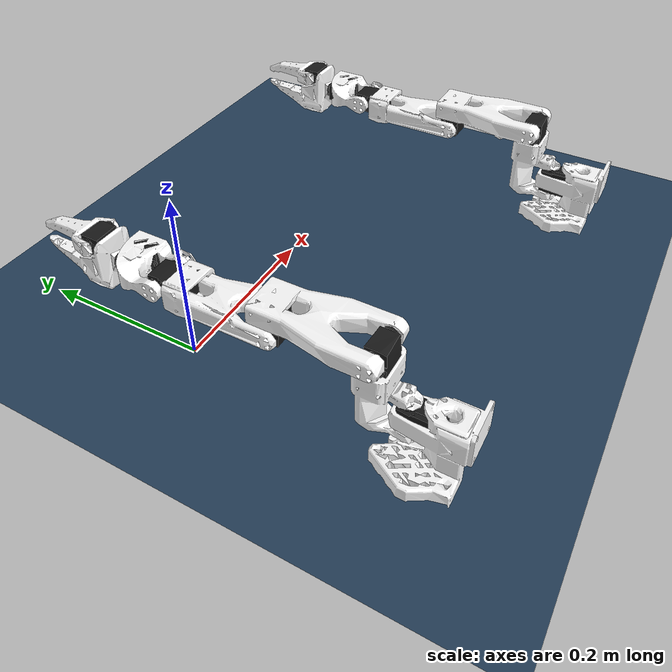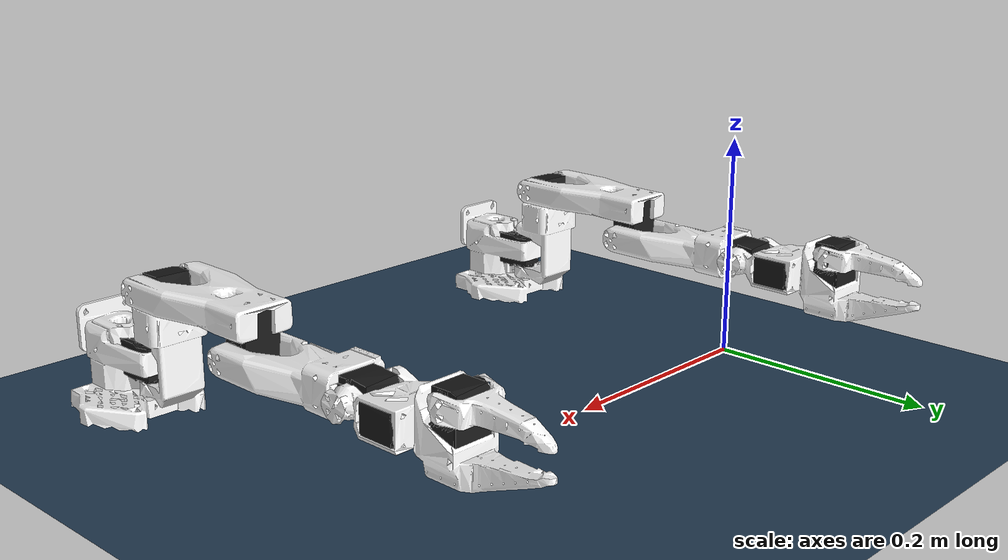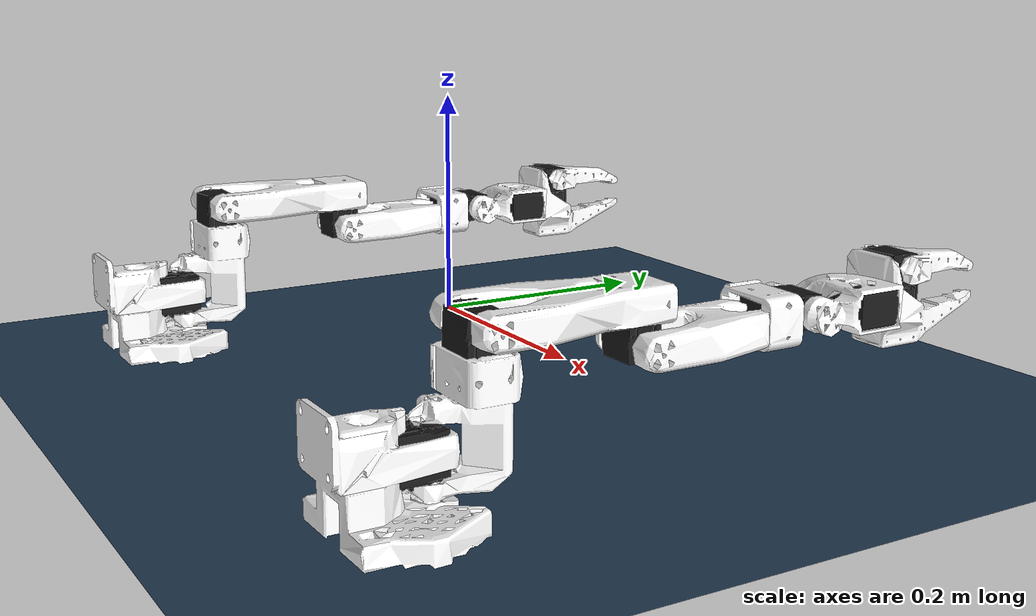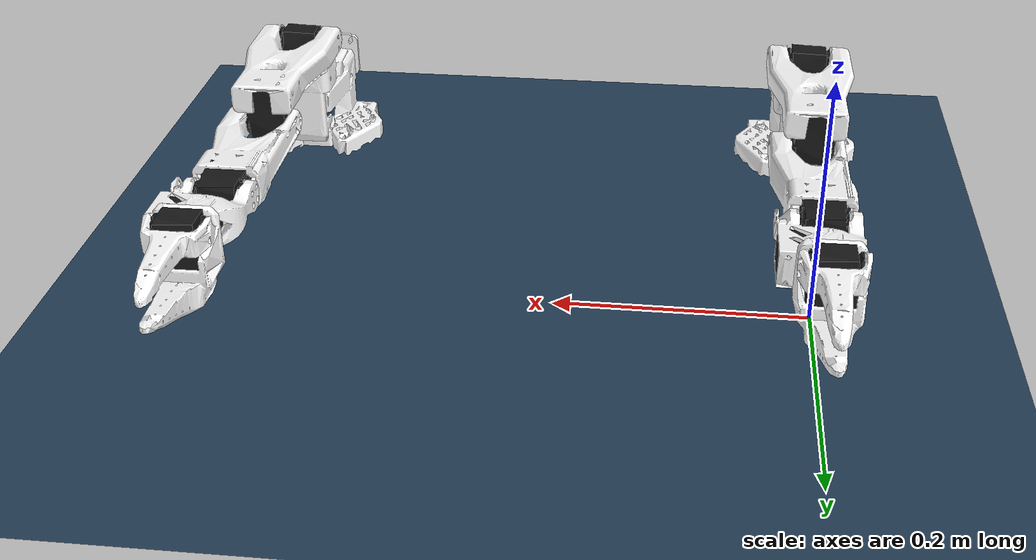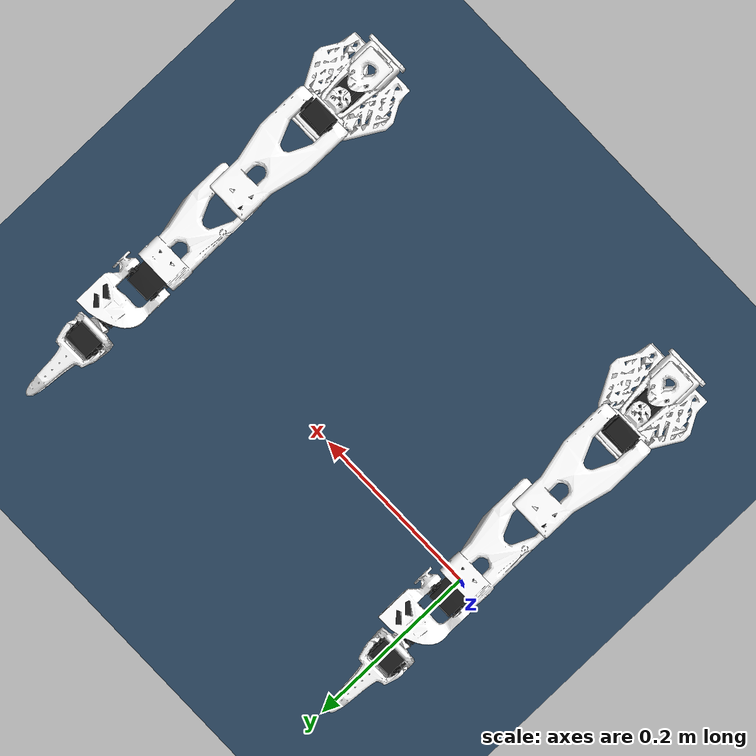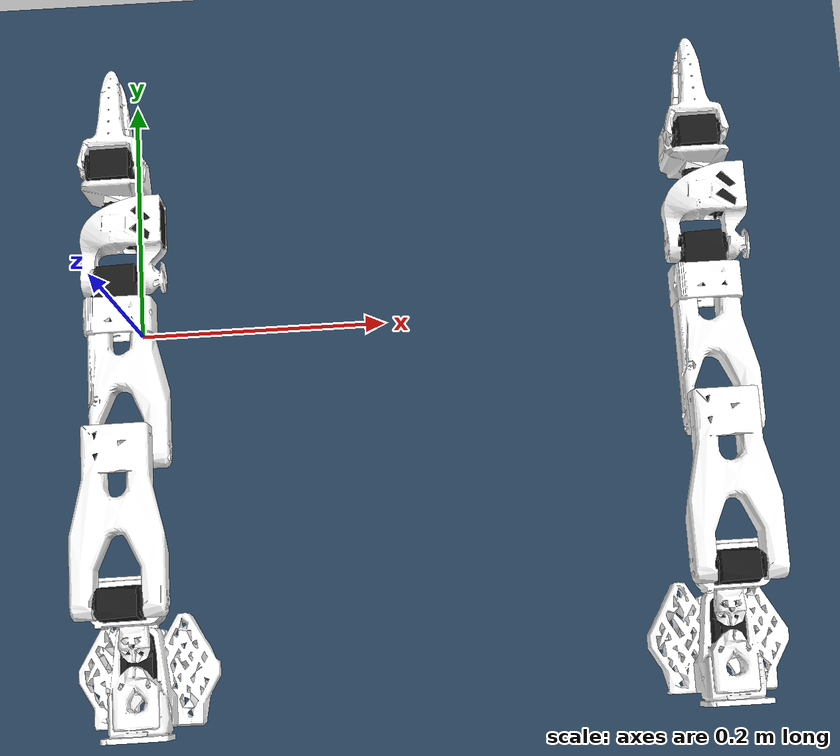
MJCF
<mujoco model="so_arm100 scene">
  <include file="so_arm100.xml"/>

  <statistic center="0.225 0.0 0.08" extent="0.65"/>

  <visual>
    <headlight diffuse="0.6 0.6 0.6" ambient="0.3 0.3 0.3" specular="0 0 0"/>
    <rgba haze="0.15 0.25 0.35 1"/>
    <global azimuth="45" elevation="-20"/>
  </visual>

  <asset>
    <texture type="skybox" builtin="gradient" rgb1="0.3 0.5 0.7" rgb2="0 0 0" width="512" height="3072"/>
    <texture type="2d" name="groundplane" builtin="checker" mark="edge" rgb1="0.2 0.3 0.4" rgb2="0.1 0.2 0.3"
      markrgb="0.8 0.8 0.8" width="300" height="300"/>
    <material name="groundplane" texture="groundplane" texuniform="true" texrepeat="5 5" reflectance="0.2"/>
  </asset>

  <worldbody>
    <light pos="0 0 1.5" dir="0 0 -1" directional="true"/>
    <geom name="floor" size="0 0 0.05" type="plane" material="groundplane"/>
    <!-- Overhead camera centered between arms. -->
    <camera name="overhead_cam" pos="0.225 0.0 1.0" quat="1 0 0 0" fovy="45" />
    <!-- D435i RGB-like FoV: vertical ~42 deg (MuJoCo fovy is vertical FoV). -->
    <camera name="front_cam" pos="0.225 0.75 0.45" xyaxes="-1 0 0 0 -0.5 0.866" fovy="42" />
  </worldbody>
</mujoco>

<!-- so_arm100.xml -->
<mujoco model="so_arm100_bimanual">
  <!--
    Original from: MuJoCo Menagerie (https://github.com/deepmind/mujoco_menagerie)
    Licensed under Apache License 2.0
    Modifications: Bimanual layout with left/right SO ARM100 robots.
  -->
  <compiler angle="radian" meshdir="assets/"/>

  <option cone="elliptic" impratio="10"/>

  <asset>
    <material name="white" rgba="1 1 1 1"/>
    <material name="black" rgba="0.1 0.1 0.1 1"/>

    <mesh name="Base" file="Base.stl"/>
    <mesh name="Base_Motor" file="Base_Motor.stl"/>
    <mesh name="Rotation_Pitch" file="Rotation_Pitch.stl"/>
    <mesh name="Rotation_Pitch_Motor" file="Rotation_Pitch_Motor.stl"/>
    <mesh name="Upper_Arm" file="Upper_Arm.stl"/>
    <mesh name="Upper_Arm_Motor" file="Upper_Arm_Motor.stl"/>
    <mesh name="Lower_Arm" file="Lower_Arm.stl"/>
    <mesh name="Lower_Arm_Motor" file="Lower_Arm_Motor.stl"/>
    <mesh name="Wrist_Pitch_Roll" file="Wrist_Pitch_Roll.stl"/>
    <mesh name="Wrist_Pitch_Roll_Motor" file="Wrist_Pitch_Roll_Motor.stl"/>
    <mesh name="Fixed_Jaw" file="Fixed_Jaw.stl"/>
    <mesh name="Fixed_Jaw_Motor" file="Fixed_Jaw_Motor.stl"/>
    <mesh name="Fixed_Jaw_Collision_1" file="Fixed_Jaw_Collision_1.stl"/>
    <mesh name="Fixed_Jaw_Collision_2" file="Fixed_Jaw_Collision_2.stl"/>
    <mesh name="Moving_Jaw" file="Moving_Jaw.stl"/>
    <mesh name="Moving_Jaw_Collision_1" file="Moving_Jaw_Collision_1.stl"/>
    <mesh name="Moving_Jaw_Collision_2" file="Moving_Jaw_Collision_2.stl"/>
    <mesh name="Moving_Jaw_Collision_3" file="Moving_Jaw_Collision_3.stl"/>
  </asset>

  <default>
    <default class="so_arm100">
      <joint frictionloss="0.1" armature="0.1"/>
      <position kp="50" dampratio="1" forcerange="-3.5 3.5"/>
      <default class="Rotation">
        <joint axis="0 1 0" range="-1.92 1.92"/>
      </default>
      <default class="Pitch">
        <joint axis="1 0 0" range="-3.32 0.174"/>
      </default>
      <default class="Elbow">
        <joint axis="1 0 0" range="-0.174 3.14"/>
      </default>
      <default class="Wrist_Pitch">
        <joint axis="1 0 0" range="-1.66 1.66"/>
      </default>
      <default class="Wrist_Roll">
        <joint axis="0 1 0" range="-2.79 2.79"/>
      </default>
      <default class="Jaw">
        <joint axis="0 0 1" range="-0.174 1.75"/>
      </default>
      <default class="visual">
        <geom type="mesh" contype="0" conaffinity="0" density="0" group="2" material="white"/>
        <default class="motor_visual">
          <geom material="black"/>
        </default>
      </default>
      <default class="collision">
        <geom group="3" type="mesh" material="white"/>
        <default class="finger_collision">
          <geom type="box" solimp="2 1 0.01" solref="0.01 1" friction="1 0.005 0.0001"/>
        </default>
      </default>
    </default>
  </default>

  <worldbody>
    <!-- Left arm (aligned along +Y), placed on negative X side. -->
    <body name="left_Base" pos="0.0 -0.3 0" quat="0 0 0 1" childclass="so_arm100">
      <geom type="mesh" mesh="Base" class="visual"/>
      <geom type="mesh" mesh="Base_Motor" class="motor_visual"/>
      <geom type="mesh" mesh="Base" class="collision"/>
      <body name="left_Rotation_Pitch" pos="0 -0.0452 0.0165" quat="0.707105 0.707108 0 0">
        <inertial pos="-9.07886e-05 0.0590972 0.031089" quat="0.363978 0.441169 -0.623108 0.533504" mass="0.119226"
          diaginertia="5.94278e-05 5.89975e-05 3.13712e-05"/>
        <joint name="left_Rotation" class="Rotation"/>
        <geom type="mesh" mesh="Rotation_Pitch" class="visual"/>
        <geom type="mesh" mesh="Rotation_Pitch_Motor" class="motor_visual"/>
        <geom type="mesh" mesh="Rotation_Pitch" class="collision"/>
        <body name="left_Upper_Arm" pos="0 0.1025 0.0306" euler="1.57079 0 0">
          <inertial pos="-1.72052e-05 0.0701802 0.00310545" quat="0.50104 0.498994 -0.493562 0.50632" mass="0.162409"
            diaginertia="0.000213312 0.000167164 7.01522e-05"/>
          <joint name="left_Pitch" class="Pitch"/>
          <geom type="mesh" mesh="Upper_Arm" class="visual"/>
          <geom type="mesh" mesh="Upper_Arm_Motor" class="motor_visual"/>
          <geom type="mesh" mesh="Upper_Arm" class="collision"/>
          <body name="left_Lower_Arm" pos="0 0.11257 0.028" euler="-1.57079 0 0">
            <inertial pos="-0.00339604 0.00137796 0.0768007" quat="0.701995 0.0787996 0.0645626 0.704859"
              mass="0.147968" diaginertia="0.000138803 0.000107748 4.84242e-05"/>
            <joint name="left_Elbow" class="Elbow"/>
            <geom type="mesh" mesh="Lower_Arm" class="visual"/>
            <geom type="mesh" mesh="Lower_Arm_Motor" class="motor_visual"/>
            <geom type="mesh" mesh="Lower_Arm" class="collision"/>
            <body name="left_Wrist_Pitch_Roll" pos="0 0.0052 0.1349" euler="-1.57079 0 0">
              <inertial pos="-0.00852653 -0.0352279 -2.34622e-05" quat="-0.0522806 0.705235 0.0549524 0.704905"
                mass="0.0661321" diaginertia="3.45403e-05 2.39041e-05 1.94704e-05"/>
              <joint name="left_Wrist_Pitch" class="Wrist_Pitch"/>
              <geom type="mesh" mesh="Wrist_Pitch_Roll" class="visual"/>
              <geom type="mesh" mesh="Wrist_Pitch_Roll_Motor" class="motor_visual"/>
              <geom type="mesh" mesh="Wrist_Pitch_Roll" class="collision"/>
              <body name="left_Fixed_Jaw" pos="0 -0.0601 0" euler="0 1.57079 0">
                <inertial pos="0.00552377 -0.0280167 0.000483583" quat="0.41836 0.620891 -0.350644 0.562599"
                  mass="0.0929859" diaginertia="5.03136e-05 4.64098e-05 2.72961e-05"/>
                <joint name="left_Wrist_Roll" class="Wrist_Roll"/>
                <geom type="mesh" mesh="Fixed_Jaw" class="visual"/>
                <geom type="mesh" mesh="Fixed_Jaw_Motor" class="motor_visual"/>
                <geom type="mesh" mesh="Fixed_Jaw_Collision_1" class="collision"/>
                <geom type="mesh" mesh="Fixed_Jaw_Collision_2" class="collision"/>
                <geom class="finger_collision" name="left_fixed_jaw_pad_1" size="0.001 0.005 0.004" pos="0.0089 -0.1014 0"/>
                <geom class="finger_collision" name="left_fixed_jaw_pad_2" size="0.001 0.005 0.006" pos="0.0109 -0.0914 0"/>
                <geom class="finger_collision" name="left_fixed_jaw_pad_3" size="0.001 0.01 0.007" pos="0.0126 -0.0768 0"/>
                <geom class="finger_collision" name="left_fixed_jaw_pad_4" size="0.001 0.01 0.008" pos="0.0143 -0.0572 0"/>
                <camera name="left_wrist_cam" pos="0.01 0.00 0.04" xyaxes="1 0 0 0 0.3 -1" fovy="60"/>
                <body name="left_Moving_Jaw" pos="-0.0202 -0.0244 0" quat="1.34924e-11 -3.67321e-06 1 -3.67321e-06">
                  <inertial pos="-0.00161745 -0.0303473 0.000449646" quat="0.696562 0.716737 -0.0239844 -0.0227026"
                    mass="0.0202444" diaginertia="1.11265e-05 8.99651e-06 2.99548e-06"/>
                  <joint name="left_Jaw" class="Jaw"/>
                  <geom type="mesh" mesh="Moving_Jaw" class="visual"/>
                  <geom type="mesh" mesh="Moving_Jaw_Collision_1" class="collision"/>
                  <geom type="mesh" mesh="Moving_Jaw_Collision_2" class="collision"/>
                  <geom type="mesh" mesh="Moving_Jaw_Collision_3" class="collision"/>
                  <geom class="finger_collision" name="left_moving_jaw_pad_1" size="0.001 0.005 0.004" pos="-0.0113 -0.077 0"/>
                  <geom class="finger_collision" name="left_moving_jaw_pad_2" size="0.001 0.005 0.006" pos="-0.0093 -0.067 0"/>
                  <geom class="finger_collision" name="left_moving_jaw_pad_3" size="0.001 0.01 0.006" pos="-0.0073 -0.055 0"/>
                  <geom class="finger_collision" name="left_moving_jaw_pad_4" size="0.001 0.01 0.008" pos="-0.0073 -0.035 0"/>
                </body>
              </body>
            </body>
          </body>
        </body>
      </body>
    </body>

    <!-- Right arm (aligned along +Y), placed on positive X side. -->
    <body name="right_Base" pos="0.45 -0.3 0" quat="0 0 0 1" childclass="so_arm100">
      <geom type="mesh" mesh="Base" class="visual"/>
      <geom type="mesh" mesh="Base_Motor" class="motor_visual"/>
      <geom type="mesh" mesh="Base" class="collision"/>
      <body name="right_Rotation_Pitch" pos="0 -0.0452 0.0165" quat="0.707105 0.707108 0 0">
        <inertial pos="-9.07886e-05 0.0590972 0.031089" quat="0.363978 0.441169 -0.623108 0.533504" mass="0.119226"
          diaginertia="5.94278e-05 5.89975e-05 3.13712e-05"/>
        <joint name="right_Rotation" class="Rotation"/>
        <geom type="mesh" mesh="Rotation_Pitch" class="visual"/>
        <geom type="mesh" mesh="Rotation_Pitch_Motor" class="motor_visual"/>
        <geom type="mesh" mesh="Rotation_Pitch" class="collision"/>
        <body name="right_Upper_Arm" pos="0 0.1025 0.0306" euler="1.57079 0 0">
          <inertial pos="-1.72052e-05 0.0701802 0.00310545" quat="0.50104 0.498994 -0.493562 0.50632" mass="0.162409"
            diaginertia="0.000213312 0.000167164 7.01522e-05"/>
          <joint name="right_Pitch" class="Pitch"/>
          <geom type="mesh" mesh="Upper_Arm" class="visual"/>
          <geom type="mesh" mesh="Upper_Arm_Motor" class="motor_visual"/>
          <geom type="mesh" mesh="Upper_Arm" class="collision"/>
          <body name="right_Lower_Arm" pos="0 0.11257 0.028" euler="-1.57079 0 0">
            <inertial pos="-0.00339604 0.00137796 0.0768007" quat="0.701995 0.0787996 0.0645626 0.704859"
              mass="0.147968" diaginertia="0.000138803 0.000107748 4.84242e-05"/>
            <joint name="right_Elbow" class="Elbow"/>
            <geom type="mesh" mesh="Lower_Arm" class="visual"/>
            <geom type="mesh" mesh="Lower_Arm_Motor" class="motor_visual"/>
            <geom type="mesh" mesh="Lower_Arm" class="collision"/>
            <body name="right_Wrist_Pitch_Roll" pos="0 0.0052 0.1349" euler="-1.57079 0 0">
              <inertial pos="-0.00852653 -0.0352279 -2.34622e-05" quat="-0.0522806 0.705235 0.0549524 0.704905"
                mass="0.0661321" diaginertia="3.45403e-05 2.39041e-05 1.94704e-05"/>
              <joint name="right_Wrist_Pitch" class="Wrist_Pitch"/>
              <geom type="mesh" mesh="Wrist_Pitch_Roll" class="visual"/>
              <geom type="mesh" mesh="Wrist_Pitch_Roll_Motor" class="motor_visual"/>
              <geom type="mesh" mesh="Wrist_Pitch_Roll" class="collision"/>
              <body name="right_Fixed_Jaw" pos="0 -0.0601 0" euler="0 1.57079 0">
                <inertial pos="0.00552377 -0.0280167 0.000483583" quat="0.41836 0.620891 -0.350644 0.562599"
                  mass="0.0929859" diaginertia="5.03136e-05 4.64098e-05 2.72961e-05"/>
                <joint name="right_Wrist_Roll" class="Wrist_Roll"/>
                <geom type="mesh" mesh="Fixed_Jaw" class="visual"/>
                <geom type="mesh" mesh="Fixed_Jaw_Motor" class="motor_visual"/>
                <geom type="mesh" mesh="Fixed_Jaw_Collision_1" class="collision"/>
                <geom type="mesh" mesh="Fixed_Jaw_Collision_2" class="collision"/>
                <geom class="finger_collision" name="right_fixed_jaw_pad_1" size="0.001 0.005 0.004" pos="0.0089 -0.1014 0"/>
                <geom class="finger_collision" name="right_fixed_jaw_pad_2" size="0.001 0.005 0.006" pos="0.0109 -0.0914 0"/>
                <geom class="finger_collision" name="right_fixed_jaw_pad_3" size="0.001 0.01 0.007" pos="0.0126 -0.0768 0"/>
                <geom class="finger_collision" name="right_fixed_jaw_pad_4" size="0.001 0.01 0.008" pos="0.0143 -0.0572 0"/>
                <camera name="right_wrist_cam" pos="0.01 0.00 0.04" xyaxes="1 0 0 0 0.3 -1" fovy="60"/>
                <body name="right_Moving_Jaw" pos="-0.0202 -0.0244 0" quat="1.34924e-11 -3.67321e-06 1 -3.67321e-06">
                  <inertial pos="-0.00161745 -0.0303473 0.000449646" quat="0.696562 0.716737 -0.0239844 -0.0227026"
                    mass="0.0202444" diaginertia="1.11265e-05 8.99651e-06 2.99548e-06"/>
                  <joint name="right_Jaw" class="Jaw"/>
                  <geom type="mesh" mesh="Moving_Jaw" class="visual"/>
                  <geom type="mesh" mesh="Moving_Jaw_Collision_1" class="collision"/>
                  <geom type="mesh" mesh="Moving_Jaw_Collision_2" class="collision"/>
                  <geom type="mesh" mesh="Moving_Jaw_Collision_3" class="collision"/>
                  <geom class="finger_collision" name="right_moving_jaw_pad_1" size="0.001 0.005 0.004" pos="-0.0113 -0.077 0"/>
                  <geom class="finger_collision" name="right_moving_jaw_pad_2" size="0.001 0.005 0.006" pos="-0.0093 -0.067 0"/>
                  <geom class="finger_collision" name="right_moving_jaw_pad_3" size="0.001 0.01 0.006" pos="-0.0073 -0.055 0"/>
                  <geom class="finger_collision" name="right_moving_jaw_pad_4" size="0.001 0.01 0.008" pos="-0.0073 -0.035 0"/>
                </body>
              </body>
            </body>
          </body>
        </body>
      </body>
    </body>
  </worldbody>

  <actuator>
    <position class="Rotation" name="left_Rotation" joint="left_Rotation" inheritrange="1"/>
    <position class="Pitch" name="left_Pitch" joint="left_Pitch" inheritrange="1"/>
    <position class="Elbow" name="left_Elbow" joint="left_Elbow" inheritrange="1"/>
    <position class="Wrist_Pitch" name="left_Wrist_Pitch" joint="left_Wrist_Pitch" inheritrange="1"/>
    <position class="Wrist_Roll" name="left_Wrist_Roll" joint="left_Wrist_Roll" inheritrange="1"/>
    <position class="Jaw" name="left_Jaw" joint="left_Jaw" inheritrange="1"/>

    <position class="Rotation" name="right_Rotation" joint="right_Rotation" inheritrange="1"/>
    <position class="Pitch" name="right_Pitch" joint="right_Pitch" inheritrange="1"/>
    <position class="Elbow" name="right_Elbow" joint="right_Elbow" inheritrange="1"/>
    <position class="Wrist_Pitch" name="right_Wrist_Pitch" joint="right_Wrist_Pitch" inheritrange="1"/>
    <position class="Wrist_Roll" name="right_Wrist_Roll" joint="right_Wrist_Roll" inheritrange="1"/>
    <position class="Jaw" name="right_Jaw" joint="right_Jaw" inheritrange="1"/>
  </actuator>

  <contact>
    <exclude body1="left_Base" body2="left_Rotation_Pitch"/>
    <exclude body1="right_Base" body2="right_Rotation_Pitch"/>
  </contact>

  <keyframe>
    <key
      name="home"
      qpos="0 -1.57 1.57 1.57 0 0 0 -1.57 1.57 1.57 0 0"
      ctrl="0 -1.57 1.57 1.57 0 0 0 -1.57 1.57 1.57 0 0"
    />
    <key
      name="rest"
      qpos="0 -3.32 3.11 1.18 0 -0.174 0 -3.32 3.11 1.18 0 -0.174"
      ctrl="0 -3.32 3.11 1.18 0 -0.174 0 -3.32 3.11 1.18 0 -0.174"
    />
  </keyframe>
</mujoco>
